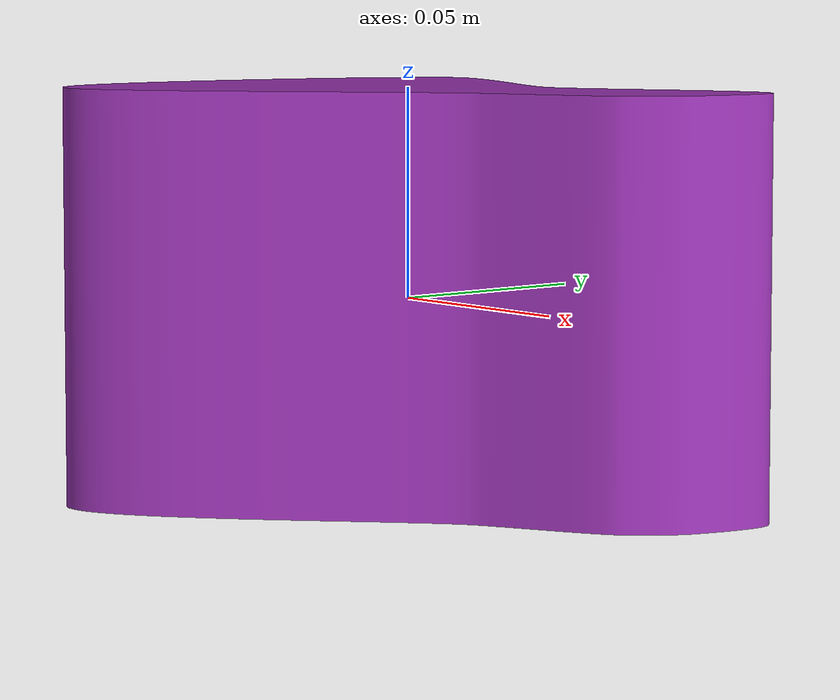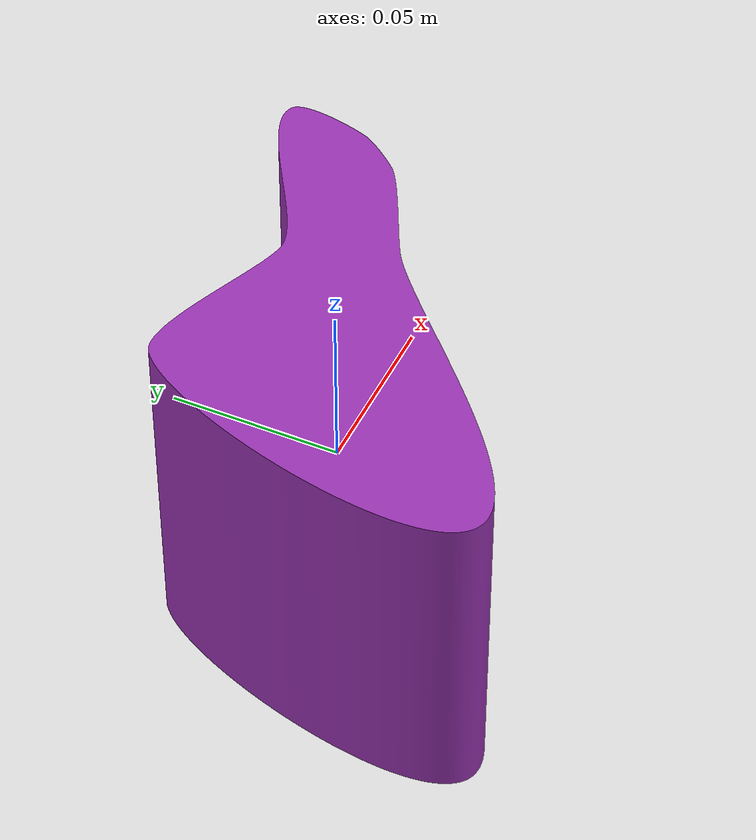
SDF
<?xml version="1.0" ?>
                        <sdf version="1.6">
                          <model name="bezier_19">
                            <link name="link">
                              <pose>0 0 0 0 0 0</pose>
                              <gravity>true</gravity>
                              <static>false</static>
                              <inertial>
                                <mass>0.05</mass>
                                <inertia>
                                  <ixx>5</ixx>
                                  <ixy>0</ixy>
                                  <ixz>0</ixz>
                                  <iyy>5</iyy>
                                  <iyz>0</iyz>
                                  <izz>0.1</izz>
                                </inertia>
                              </inertial>
                              <collision name="collision">
                                <geometry>
                                  <mesh>
                                    <uri>file:///home/romi-lab-2/project_ws/src/my_simulation/my_simulation/meshes/bezier/model_19.stl</uri>
                                    <scale>0.15 0.15 0.1</scale>
                                  </mesh>
                                </geometry>
                                <surface>
                                  <friction>
                                    <ode>
                                      <mu>0.13</mu>
                                      <mu2>0.13</mu2>
                                    </ode>
                                  </friction>
                                  <contact>
                                    <ode>
                                      <max_vel>0.001</max_vel>
                                      <min_depth>0.1</min_depth>
                                      <kp>1e8</kp>
                                      <kd>100</kd>
                                    </ode>
                                  </contact>
                                </surface>
                              </collision>
                              <visual name="visual">
                                <geometry>
                                  <mesh>
                                    <uri>file:///home/romi-lab-2/project_ws/src/my_simulation/my_simulation/meshes/bezier/model_19.stl</uri>
                                    <scale>0.15 0.15 0.1</scale>
                                  </mesh>
                                </geometry>
                                <material>
                                  <script>
                                    <name>Gazebo/Purple</name>
                                    <uri>file://media/materials/scripts/gazebo.material</uri>
                                  </script>
                                </material>
                              </visual>
                            </link>
                          </model>
                        </sdf>
